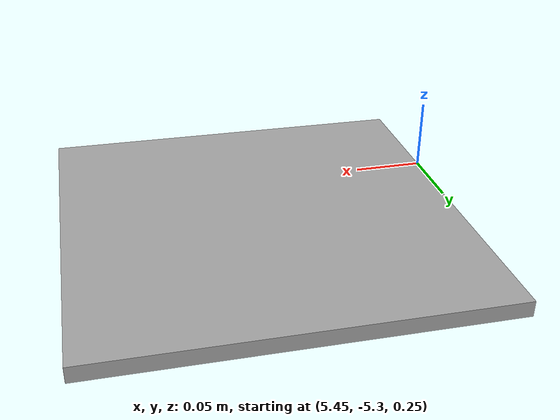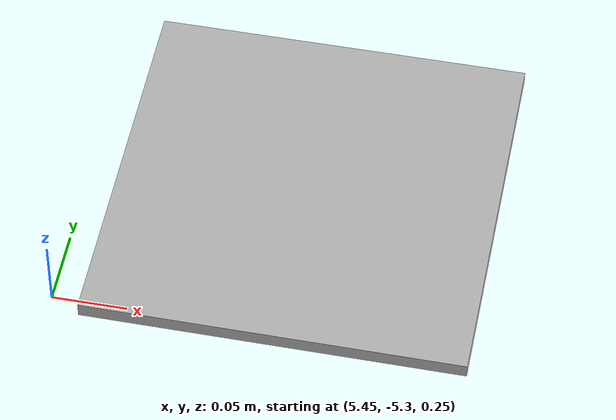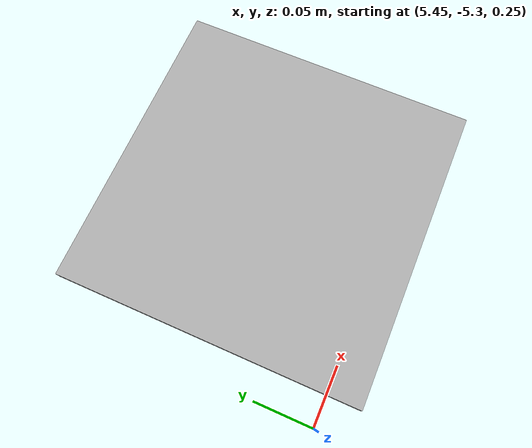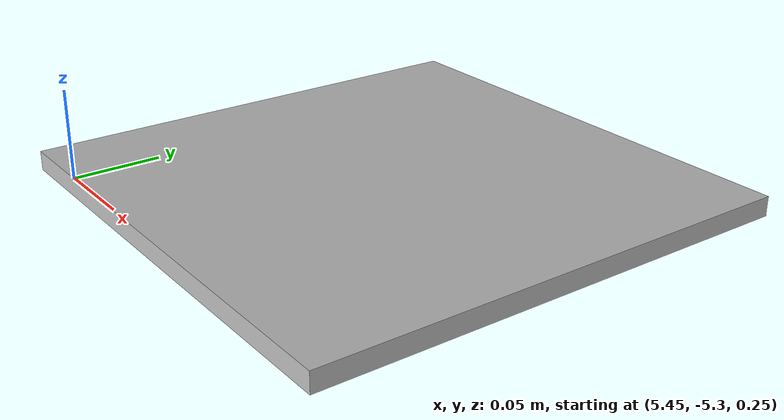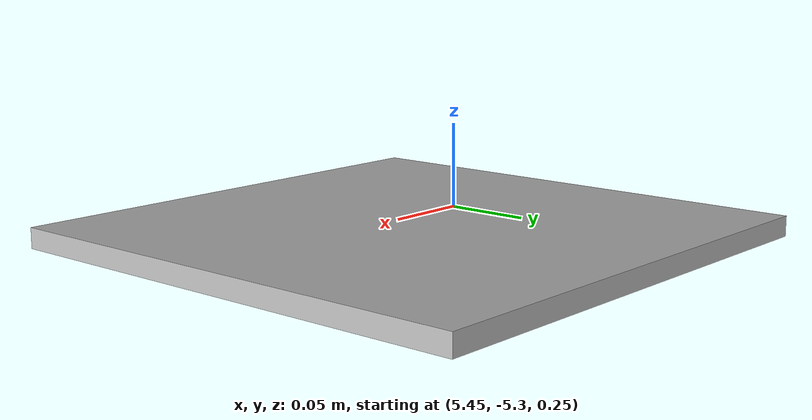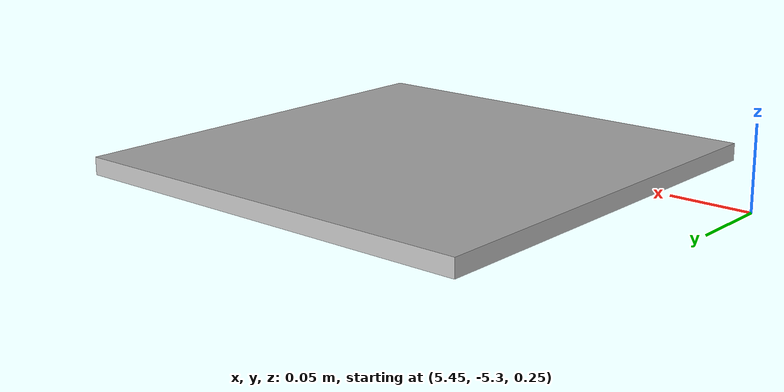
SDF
<?xml version="1.0"?>
<sdf version="1.5">
    <model name="12qr">
        <static>true</static>
        <link name="link">

             <collision name="collision12">
                <pose>5.6 -5.2 0.27 0 0 0</pose>
                <geometry>
                    <mesh>
                        <uri>model://12qr/meshes/qr.stl</uri>
                    </mesh>
                </geometry>
            </collision>
            <visual name="visual12">

              <pose>5.6 -5.2 0.27 0 0 0</pose>
              <geometry>
              <mesh>
                 <uri>model://12qr/meshes/qr12.dae</uri>
              </mesh>
              </geometry>

              <material>
                  <script>
                      <uri>model://12qr/materials/scripts</uri>
                      <uri>model://12qr/materials/textures</uri>
                      <name>qrMat/Diffuse</name>
                  </script>
              </material>
             </visual>
        </link>
    </model>
</sdf>
